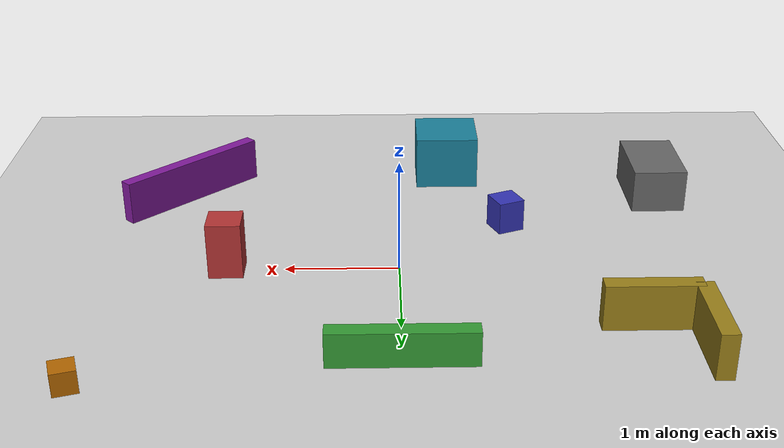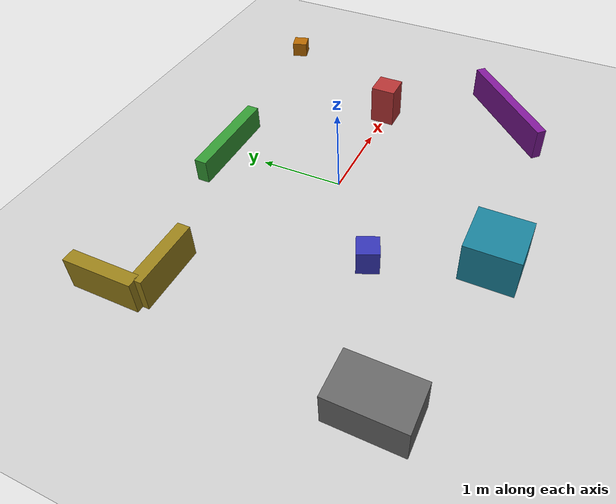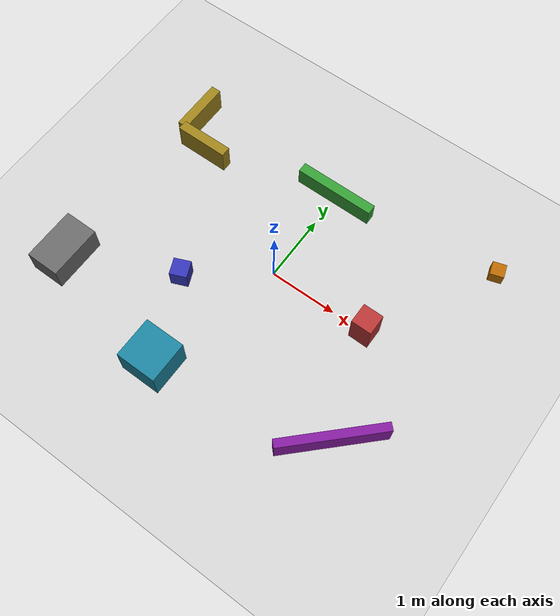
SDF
<?xml version="1.0"?>
<!-- SPDX-License-Identifier: Apache-2.0 -->
<sdf version="1.8">
  <world name="empty_world">

    <!-- Physics configuration -->
    <physics name="default_physics" type="ode">
      <max_step_size>0.001</max_step_size>
      <real_time_factor>1.0</real_time_factor>
      <real_time_update_rate>1000</real_time_update_rate>
    </physics>

    <!-- Plugins required for Gazebo Fortress simulation -->
    <plugin filename="ignition-gazebo-physics-system"
            name="ignition::gazebo::systems::Physics"/>
    <plugin filename="ignition-gazebo-user-commands-system"
            name="ignition::gazebo::systems::UserCommands"/>
    <plugin filename="ignition-gazebo-scene-broadcaster-system"
            name="ignition::gazebo::systems::SceneBroadcaster"/>
    <plugin filename="ignition-gazebo-sensors-system"
            name="ignition::gazebo::systems::Sensors">
      <render_engine>ogre</render_engine>
    </plugin>
    <plugin filename="ignition-gazebo-imu-system"
            name="ignition::gazebo::systems::Imu"/>
    <plugin filename="ignition-gazebo-contact-system"
            name="ignition::gazebo::systems::Contact"/>

    <!-- Sun light -->
    <light type="directional" name="sun">
      <cast_shadows>true</cast_shadows>
      <pose>0 0 10 0 0 0</pose>
      <diffuse>0.9 0.9 0.9 1</diffuse>
      <specular>0.3 0.3 0.3 1</specular>
      <attenuation>
        <range>1000</range>
        <constant>0.9</constant>
        <linear>0.01</linear>
        <quadratic>0.001</quadratic>
      </attenuation>
      <direction>-0.5 0.1 -0.9</direction>
    </light>

    <!-- Ground plane -->
    <model name="ground_plane">
      <static>true</static>
      <link name="ground_link">
        <collision name="ground_collision">
          <geometry>
            <plane>
              <normal>0 0 1</normal>
              <size>100 100</size>
            </plane>
          </geometry>
          <surface>
            <friction>
              <ode>
                <mu>100</mu>
                <mu2>50</mu2>
              </ode>
            </friction>
          </surface>
        </collision>
        <visual name="ground_visual">
          <geometry>
            <plane>
              <normal>0 0 1</normal>
              <size>100 100</size>
            </plane>
          </geometry>
          <material>
            <ambient>0.8 0.8 0.8 1</ambient>
            <diffuse>0.8 0.8 0.8 1</diffuse>
            <specular>0.2 0.2 0.2 1</specular>
          </material>
        </visual>
      </link>
    </model>

    <!-- Scene configuration -->
    <scene>
      <ambient>0.4 0.4 0.4 1</ambient>
      <background>0.7 0.85 1.0 1</background>
      <shadows>true</shadows>
    </scene>

    <!-- Gravity -->
    <gravity>0 0 -9.81</gravity>

    <!-- Magnetic field -->
    <magnetic_field>5.5645e-06 2.2886e-05 -4.2322e-05</magnetic_field>

    <!-- Atmosphere -->
    <atmosphere type="adiabatic"/>

    <!-- Static box obstacles for navigation testing                   -->
    <!-- Arranged to create narrow passages and require path planning  -->

    <!-- Obstacle 1: Tall pillar near center -->
    <model name="obstacle_1">
      <static>true</static>
      <pose>1.5 0.0 0.25 0 0 0</pose>
      <link name="link">
        <collision name="collision">
          <geometry>
            <box><size>0.3 0.3 0.5</size></box>
          </geometry>
        </collision>
        <visual name="visual">
          <geometry>
            <box><size>0.3 0.3 0.5</size></box>
          </geometry>
          <material>
            <ambient>0.6 0.2 0.2 1</ambient>
            <diffuse>0.7 0.2 0.2 1</diffuse>
          </material>
        </visual>
      </link>
    </model>

    <!-- Obstacle 2: Wide wall segment -->
    <model name="obstacle_2">
      <static>true</static>
      <pose>0.0 1.5 0.15 0 0 0</pose>
      <link name="link">
        <collision name="collision">
          <geometry>
            <box><size>1.2 0.15 0.3</size></box>
          </geometry>
        </collision>
        <visual name="visual">
          <geometry>
            <box><size>1.2 0.15 0.3</size></box>
          </geometry>
          <material>
            <ambient>0.2 0.5 0.2 1</ambient>
            <diffuse>0.2 0.6 0.2 1</diffuse>
          </material>
        </visual>
      </link>
    </model>

    <!-- Obstacle 3: Small cube -->
    <model name="obstacle_3">
      <static>true</static>
      <pose>-1.0 -0.8 0.15 0 0 0.4</pose>
      <link name="link">
        <collision name="collision">
          <geometry>
            <box><size>0.25 0.25 0.3</size></box>
          </geometry>
        </collision>
        <visual name="visual">
          <geometry>
            <box><size>0.25 0.25 0.3</size></box>
          </geometry>
          <material>
            <ambient>0.2 0.2 0.6 1</ambient>
            <diffuse>0.2 0.2 0.7 1</diffuse>
          </material>
        </visual>
      </link>
    </model>

    <!-- Obstacle 4: L-shaped arrangement (two boxes) -->
    <model name="obstacle_4a">
      <static>true</static>
      <pose>-2.0 1.0 0.2 0 0 0</pose>
      <link name="link">
        <collision name="collision">
          <geometry>
            <box><size>0.8 0.15 0.4</size></box>
          </geometry>
        </collision>
        <visual name="visual">
          <geometry>
            <box><size>0.8 0.15 0.4</size></box>
          </geometry>
          <material>
            <ambient>0.5 0.4 0.1 1</ambient>
            <diffuse>0.6 0.5 0.1 1</diffuse>
          </material>
        </visual>
      </link>
    </model>

    <model name="obstacle_4b">
      <static>true</static>
      <pose>-2.4 1.4 0.2 0 0 0</pose>
      <link name="link">
        <collision name="collision">
          <geometry>
            <box><size>0.15 0.8 0.4</size></box>
          </geometry>
        </collision>
        <visual name="visual">
          <geometry>
            <box><size>0.15 0.8 0.4</size></box>
          </geometry>
          <material>
            <ambient>0.5 0.4 0.1 1</ambient>
            <diffuse>0.6 0.5 0.1 1</diffuse>
          </material>
        </visual>
      </link>
    </model>

    <!-- Obstacle 5: Narrow corridor walls -->
    <model name="obstacle_5">
      <static>true</static>
      <pose>2.0 -1.5 0.2 0 0 0.78</pose>
      <link name="link">
        <collision name="collision">
          <geometry>
            <box><size>1.5 0.12 0.4</size></box>
          </geometry>
        </collision>
        <visual name="visual">
          <geometry>
            <box><size>1.5 0.12 0.4</size></box>
          </geometry>
          <material>
            <ambient>0.4 0.1 0.5 1</ambient>
            <diffuse>0.5 0.1 0.6 1</diffuse>
          </material>
        </visual>
      </link>
    </model>

    <!-- Obstacle 6: Large block creating dead-end -->
    <model name="obstacle_6">
      <static>true</static>
      <pose>-0.5 -2.0 0.25 0 0 0</pose>
      <link name="link">
        <collision name="collision">
          <geometry>
            <box><size>0.6 0.6 0.5</size></box>
          </geometry>
        </collision>
        <visual name="visual">
          <geometry>
            <box><size>0.6 0.6 0.5</size></box>
          </geometry>
          <material>
            <ambient>0.1 0.4 0.5 1</ambient>
            <diffuse>0.1 0.5 0.6 1</diffuse>
          </material>
        </visual>
      </link>
    </model>

    <!-- Obstacle 7: Scattered small boxes -->
    <model name="obstacle_7">
      <static>true</static>
      <pose>2.5 1.8 0.1 0 0 0.3</pose>
      <link name="link">
        <collision name="collision">
          <geometry>
            <box><size>0.2 0.2 0.2</size></box>
          </geometry>
        </collision>
        <visual name="visual">
          <geometry>
            <box><size>0.2 0.2 0.2</size></box>
          </geometry>
          <material>
            <ambient>0.6 0.3 0.0 1</ambient>
            <diffuse>0.7 0.4 0.0 1</diffuse>
          </material>
        </visual>
      </link>
    </model>

    <!-- Obstacle 8: Table-like structure -->
    <model name="obstacle_8">
      <static>true</static>
      <pose>-2.5 -1.5 0.2 0 0 0</pose>
      <link name="link">
        <collision name="collision">
          <geometry>
            <box><size>0.5 0.8 0.4</size></box>
          </geometry>
        </collision>
        <visual name="visual">
          <geometry>
            <box><size>0.5 0.8 0.4</size></box>
          </geometry>
          <material>
            <ambient>0.3 0.3 0.3 1</ambient>
            <diffuse>0.4 0.4 0.4 1</diffuse>
          </material>
        </visual>
      </link>
    </model>

  </world>
</sdf>
